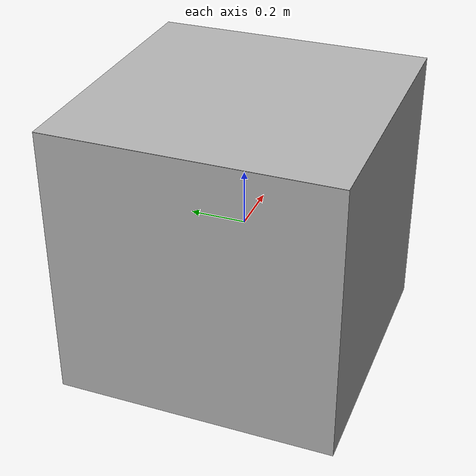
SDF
<?xml version='1.0' encoding='utf-8'?>
<sdf version='1.10'>
<model name='base_takeoff'>
  <pose>0 0 0 0 0 0</pose>
  <link name='box_link'>
    <collision name='box_collision'>
      <geometry>
        <box>
          <size>1 1 1</size>
        </box>
      </geometry>
      <surface>
        <friction>
          <ode/>
        </friction>
        <bounce/>
        <contact/>
      </surface>
    </collision>
    <visual name='visual'>
      <geometry>
        <box>
          <size>1 1 0.999</size>
        </box>
      </geometry>
      <material>
        <diffuse>0.7 0.7 0.7 1</diffuse>
        <specular>1 1 1 1</specular>
        <pbr>
            <metal>
              <albedo_map>materials/textures/wall_diff.jpg</albedo_map>   <!--Takeoff base image-->
              <metalness> 0 </metalness>
              <roughness>1</roughness>
            </metal>
		      </pbr>
      </material>
    </visual>
    <visual name='image'>
      <pose>0 0 0.5 0 0 0</pose>
        <geometry>
          <box>
            <size>1 1 0.001</size>
          </box>
        </geometry>
        <material>
        <diffuse>0.7 0.7 0.7 1</diffuse>
        <specular>1 1 1 1</specular>
        <pbr>
            <metal>
              <albedo_map>materials/textures/base_suspensa.png</albedo_map>   <!--Takeoff base image-->
              <metalness> 0 </metalness>
              <roughness>1</roughness>
            </metal>
		      </pbr>
      </material>
      </visual>
    <pose>0 0 0 0 0 0</pose>
    <enable_wind>false</enable_wind>
  </link>
  <static>true</static>
  <self_collide>false</self_collide>
</model>
</sdf>
